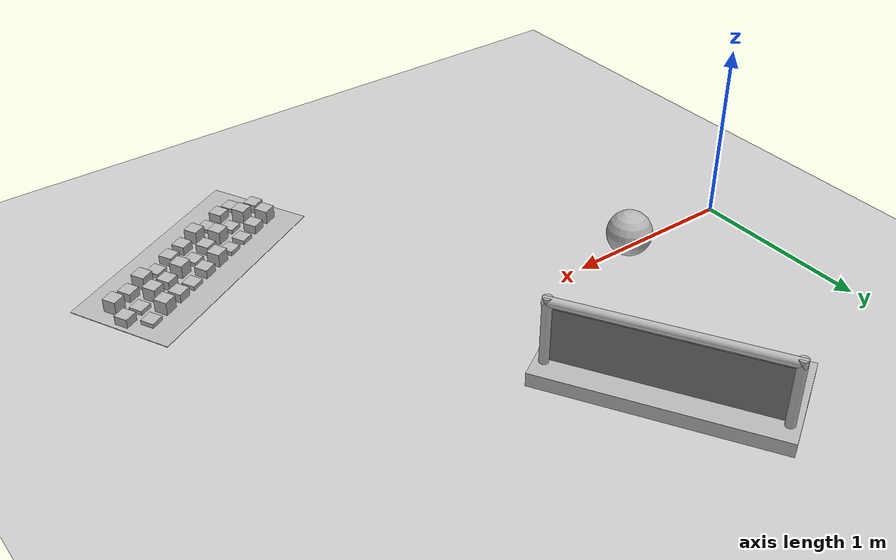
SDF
<sdf version="1.6">
 <world name="default">
  <light name="sun" type="directional">
   <pose>0 0 10 0 -0 0</pose>
   <diffuse>0.8 0.8 0.8 1</diffuse>
   <specular>0.2 0.2 0.2 1</specular>
   <attenuation>
    <range>1000</range>
    <constant>0.9</constant>
    <linear>0.01</linear>
    <quadratic>0.001</quadratic>
   </attenuation>
   <direction>-0.5 0.1 -0.9</direction>
  </light>
  <model name="ground_plane">
   <static>1</static>
   <link name="link">
    <collision name="collision">
     <geometry><plane><normal>0 0 1</normal><size>100 100</size></plane></geometry>
     <surface><friction><ode><mu>1000</mu><mu2>500</mu2></ode></friction></surface>
    </collision>
    <visual name="visual">
     <cast_shadows>0</cast_shadows>
     <geometry><plane><normal>0 0 1</normal><size>100 100</size></plane></geometry>
     <material>
      <script><uri>file://media/materials/scripts/gazebo.material</uri><name>Gazebo/Grey</name></script>
     </material>
    </visual>
   </link>
  </model>
  <gravity>0 0 -9.8</gravity>
  <magnetic_field>6e-06 2.3e-05 -4.2e-05</magnetic_field>
  <atmosphere type="adiabatic"/>
  <physics name="default_physics" default="0" type="ode">
   <max_step_size>0.001</max_step_size>
   <real_time_factor>1</real_time_factor>
   <real_time_update_rate>1000</real_time_update_rate>
  </physics>
  <scene><ambient>0.4 0.4 0.4 1</ambient><background>0.7 0.7 0.7 1</background><shadows>1</shadows></scene>
  <spherical_coordinates>
   <surface_model>EARTH_WGS84</surface_model>
   <latitude_deg>0</latitude_deg>
   <longitude_deg>0</longitude_deg>
   <elevation>0</elevation>
   <heading_deg>0</heading_deg>
  </spherical_coordinates>
  <model name="frc2016_lowbar">
   <link name="base">
    <inertial>
     <mass>50</mass>
     <inertia>
      <ixx>0.035543</ixx>
      <ixy>0</ixy>
      <ixz>0</ixz>
      <iyy>0.134412</iyy>
      <iyz>0</iyz>
      <izz>0.165376</izz>
     </inertia>
    </inertial>
    <visual name="platform">
     <pose>0 0 0.039065 0 -0 0</pose>
     <geometry><box><size>1.26 0.5996 0.07813</size></box></geometry>
    </visual>
    <collision name="platform">
     <pose>0 0 0.039065 0 -0 0</pose>
     <geometry><box><size>1.27 0.6096 0.07813</size></box></geometry>
    </collision>
    <visual name="right_column">
     <pose>-0.57845 -0.18464 0.26863 0 -0 0</pose>
     <geometry><cylinder><radius>0.0254</radius><length>0.381</length></cylinder></geometry>
    </visual>
    <collision name="right_column">
     <pose>-0.57845 -0.18464 0.26863 0 -0 0</pose>
     <geometry><cylinder><radius>0.0254</radius><length>0.381</length></cylinder></geometry>
    </collision>
    <visual name="left_column">
     <pose>0.57845 -0.18464 0.26863 0 -0 0</pose>
     <geometry><cylinder><radius>0.0254</radius><length>0.381</length></cylinder></geometry>
    </visual>
    <collision name="left_column">
     <pose>0.57845 -0.18464 0.26863 0 -0 0</pose>
     <geometry><cylinder><radius>0.0254</radius><length>0.381</length></cylinder></geometry>
    </collision>
    <visual name="horizontal">
     <pose>0 -0.18464 0.43556 0 1.5707 0</pose>
     <geometry><cylinder><radius>0.0254</radius><length>1.2018</length></cylinder></geometry>
    </visual>
    <collision name="horizontal">
     <pose>0 -0.18464 0.43556 0 1.5707 0</pose>
     <geometry><cylinder><radius>0.0254</radius><length>1.2018</length></cylinder></geometry>
    </collision>
   </link>
   <link name="wall">
    <pose>0 -0.1778 0.24323 0 -0 0</pose>
    <inertial>
     <mass>1</mass>
     <inertia>
      <ixx>0.00774528</ixx>
      <ixy>0</ixy>
      <ixz>0</ixz>
      <iyy>0.116613</iyy>
      <iyz>0</iyz>
      <izz>0.108874</izz>
     </inertia>
    </inertial>
    <visual name="visual">
     <geometry><box><size>1.1176 0.00635 0.3</size></box></geometry>
     <material><ambient>0.46 0.46 0.46 1</ambient><diffuse>0.46 0.46 0.46 1</diffuse></material>
    </visual>
    <collision name="collision"><geometry><box><size>1.143 0.00635 0.3</size></box></geometry></collision>
   </link>
   <joint name="bar_joint" type="revolute">
    <pose>0 0 0.36378 0 -0 0</pose>
    <parent>base</parent>
    <child>wall</child>
    <axis>
     <xyz>1 0 0</xyz>
     <limit><lower>-1.5707</lower><upper>1.5707</upper></limit>
     <use_parent_model_frame>0</use_parent_model_frame>
     <dynamics><spring_reference>0</spring_reference><spring_stiffness>0</spring_stiffness></dynamics>
    </axis>
   </joint>
   <pose>1.28084 0.947929 0.009995 2.5e-05 -4e-06 2.11173</pose>
  </model>
  <model name="frc2016_ball">
   <pose>0.696093 0.036476 0.136001 0 -0 0</pose>
   <link name="link">
    <inertial>
     <mass>0.213</mass>
     <inertia>
      <ixx>0.00322667</ixx>
      <ixy>0</ixy>
      <ixz>0</ixz>
      <iyy>0.00322667</iyy>
      <iyz>0</iyz>
      <izz>0.00322667</izz>
     </inertia>
    </inertial>
    <visual name="visual">
     <geometry><sphere><radius>0.127</radius></sphere></geometry>
     <material><shader type="pixel"><normal_map>__default__</normal_map></shader></material>
    </visual>
    <collision name="collision">
     <geometry><sphere><radius>0.127</radius></sphere></geometry>
     <surface>
      <friction>
       <ode><mu>1e+12</mu><mu2>1e+08</mu2><fdir1>0 0 0</fdir1><slip1>0</slip1><slip2>0</slip2></ode>
       <torsional>
        <coefficient>1</coefficient>
        <patch_radius>0</patch_radius>
        <surface_radius>0</surface_radius>
        <use_patch_radius>1</use_patch_radius>
        <ode><slip>0</slip></ode>
       </torsional>
      </friction>
      <bounce><restitution_coefficient>0.15937</restitution_coefficient><threshold>0</threshold></bounce>
      <contact>
       <collide_without_contact>0</collide_without_contact>
       <collide_without_contact_bitmask>1</collide_without_contact_bitmask>
       <collide_bitmask>1</collide_bitmask>
       <ode>
        <soft_cfm>0</soft_cfm>
        <soft_erp>0.2</soft_erp>
        <kp>1e+13</kp>
        <kd>1</kd>
        <max_vel>100</max_vel>
        <min_depth>0.001</min_depth>
       </ode>
       <bullet>
        <split_impulse>1</split_impulse>
        <split_impulse_penetration_threshold>-0.01</split_impulse_penetration_threshold>
        <soft_cfm>0</soft_cfm>
        <soft_erp>0.2</soft_erp>
        <kp>1e+13</kp>
        <kd>1</kd>
       </bullet>
      </contact>
     </surface>
    </collision>
   </link>
   <static>0</static>
   <allow_auto_disable>0</allow_auto_disable>
  </model>
  <model name="frc2016_roughterrain">
   <static>1</static>
   <link name="link">
    <visual name="platform">
     <pose>0 0 0.08269 0 -0 0</pose>
     <geometry><box><size>1.27 0.5969 0.003175</size></box></geometry>
    </visual>
    <collision name="platform">
     <pose>0 0 0.08269 0 -0 0</pose>
     <geometry><box><size>1.27 0.5969 0.003175</size></box></geometry>
    </collision>
    <visual name="row1_block1_sm">
     <pose>0.51435 0.1143 0.09698 0 -0 0</pose>
     <geometry><box><size>0.0762 0.0762 0.0254</size></box></geometry>
    </visual>
    <collision name="row1_block1_sm">
     <pose>0.51435 0.1143 0.09698 0 -0 0</pose>
     <geometry><box><size>0.0762 0.0762 0.0254</size></box></geometry>
    </collision>
    <visual name="row1_block2_lg">
     <pose>0.40005 0.1143 0.12238 0 -0 0</pose>
     <geometry><box><size>0.0762 0.0762 0.0762</size></box></geometry>
    </visual>
    <collision name="row1_block2_lg">
     <pose>0.40005 0.1143 0.12238 0 -0 0</pose>
     <geometry><box><size>0.0762 0.0762 0.0762</size></box></geometry>
    </collision>
    <visual name="row1_block3_md">
     <pose>0.28575 0.1143 0.10968 0 -0 0</pose>
     <geometry><box><size>0.0762 0.0762 0.0508</size></box></geometry>
    </visual>
    <collision name="row1_block3_md">
     <pose>0.28575 0.1143 0.10968 0 -0 0</pose>
     <geometry><box><size>0.0762 0.0762 0.0508</size></box></geometry>
    </collision>
    <visual name="row1_block4_sm">
     <pose>0.17145 0.1143 0.09698 0 -0 0</pose>
     <geometry><box><size>0.0762 0.0762 0.0254</size></box></geometry>
    </visual>
    <collision name="row1_block4_sm">
     <pose>0.17145 0.1143 0.09698 0 -0 0</pose>
     <geometry><box><size>0.0762 0.0762 0.0254</size></box></geometry>
    </collision>
    <visual name="row1_block5_md">
     <pose>0.05715 0.1143 0.10968 0 -0 0</pose>
     <geometry><box><size>0.0762 0.0762 0.0508</size></box></geometry>
    </visual>
    <collision name="row1_block5_md">
     <pose>0.05715 0.1143 0.10968 0 -0 0</pose>
     <geometry><box><size>0.0762 0.0762 0.0508</size></box></geometry>
    </collision>
    <visual name="row1_block6_lg">
     <pose>-0.05715 0.1143 0.12238 0 -0 0</pose>
     <geometry><box><size>0.0762 0.0762 0.0762</size></box></geometry>
    </visual>
    <collision name="row1_block6_lg">
     <pose>-0.05715 0.1143 0.12238 0 -0 0</pose>
     <geometry><box><size>0.0762 0.0762 0.0762</size></box></geometry>
    </collision>
    <visual name="row1_block7_sm">
     <pose>-0.17145 0.1143 0.09698 0 -0 0</pose>
     <geometry><box><size>0.0762 0.0762 0.0254</size></box></geometry>
    </visual>
    <collision name="row1_block7_sm">
     <pose>-0.17145 0.1143 0.09698 0 -0 0</pose>
     <geometry><box><size>0.0762 0.0762 0.0254</size></box></geometry>
    </collision>
    <visual name="row1_block8_sm">
     <pose>-0.28575 0.1143 0.09698 0 -0 0</pose>
     <geometry><box><size>0.0762 0.0762 0.0254</size></box></geometry>
    </visual>
    <collision name="row1_block8_sm">
     <pose>-0.28575 0.1143 0.09698 0 -0 0</pose>
     <geometry><box><size>0.0762 0.0762 0.0254</size></box></geometry>
    </collision>
    <visual name="row1_block9_md">
     <pose>-0.40005 0.1143 0.10968 0 -0 0</pose>
     <geometry><box><size>0.0762 0.0762 0.0508</size></box></geometry>
    </visual>
    <collision name="row1_block9_md">
     <pose>-0.40005 0.1143 0.10968 0 -0 0</pose>
     <geometry><box><size>0.0762 0.0762 0.0508</size></box></geometry>
    </collision>
    <visual name="row1_block10_lg">
     <pose>-0.51435 0.1143 0.12238 0 -0 0</pose>
     <geometry><box><size>0.0762 0.0762 0.0762</size></box></geometry>
    </visual>
    <collision name="row1_block10_lg">
     <pose>-0.51435 0.1143 0.12238 0 -0 0</pose>
     <geometry><box><size>0.0762 0.0762 0.0762</size></box></geometry>
    </collision>
    <visual name="row2_block1_md">
     <pose>0.5715 0 0.10968 0 -0 0</pose>
     <geometry><box><size>0.0762 0.0762 0.0508</size></box></geometry>
    </visual>
    <collision name="row2_block1_md">
     <pose>0.5715 0 0.10968 0 -0 0</pose>
     <geometry><box><size>0.0762 0.0762 0.0508</size></box></geometry>
    </collision>
    <visual name="row2_block2_sm">
     <pose>0.4572 0 0.09698 0 -0 0</pose>
     <geometry><box><size>0.0762 0.0762 0.0254</size></box></geometry>
    </visual>
    <collision name="row2_block2_sm">
     <pose>0.4572 0 0.09698 0 -0 0</pose>
     <geometry><box><size>0.0762 0.0762 0.0254</size></box></geometry>
    </collision>
    <visual name="row2_block3_lg">
     <pose>0.3429 0 0.12238 0 -0 0</pose>
     <geometry><box><size>0.0762 0.0762 0.0762</size></box></geometry>
    </visual>
    <collision name="row2_block3_lg">
     <pose>0.3429 0 0.12238 0 -0 0</pose>
     <geometry><box><size>0.0762 0.0762 0.0762</size></box></geometry>
    </collision>
    <visual name="row2_block4_md">
     <pose>0.2286 0 0.10968 0 -0 0</pose>
     <geometry><box><size>0.0762 0.0762 0.0508</size></box></geometry>
    </visual>
    <collision name="row2_block4_md">
     <pose>0.2286 0 0.10968 0 -0 0</pose>
     <geometry><box><size>0.0762 0.0762 0.0508</size></box></geometry>
    </collision>
    <visual name="row2_block5_lg">
     <pose>0.1143 0 0.12238 0 -0 0</pose>
     <geometry><box><size>0.0762 0.0762 0.0762</size></box></geometry>
    </visual>
    <collision name="row2_block5_lg">
     <pose>0.1143 0 0.12238 0 -0 0</pose>
     <geometry><box><size>0.0762 0.0762 0.0762</size></box></geometry>
    </collision>
    <visual name="row2_block6_sm">
     <pose>0 0 0.09698 0 -0 0</pose>
     <geometry><box><size>0.0762 0.0762 0.0254</size></box></geometry>
    </visual>
    <collision name="row2_block6_sm">
     <pose>0 0 0.09698 0 -0 0</pose>
     <geometry><box><size>0.0762 0.0762 0.0254</size></box></geometry>
    </collision>
    <visual name="row2_block7_md">
     <pose>-0.1143 0 0.10968 0 -0 0</pose>
     <geometry><box><size>0.0762 0.0762 0.0508</size></box></geometry>
    </visual>
    <collision name="row2_block7_md">
     <pose>-0.1143 0 0.10968 0 -0 0</pose>
     <geometry><box><size>0.0762 0.0762 0.0508</size></box></geometry>
    </collision>
    <visual name="row2_block8_lg">
     <pose>-0.2286 0 0.12238 0 -0 0</pose>
     <geometry><box><size>0.0762 0.0762 0.0762</size></box></geometry>
    </visual>
    <collision name="row2_block8_lg">
     <pose>-0.2286 0 0.12238 0 -0 0</pose>
     <geometry><box><size>0.0762 0.0762 0.0762</size></box></geometry>
    </collision>
    <visual name="row2_block9_sm">
     <pose>-0.3429 0 0.09698 0 -0 0</pose>
     <geometry><box><size>0.0762 0.0762 0.0254</size></box></geometry>
    </visual>
    <collision name="row2_block9_sm">
     <pose>-0.3429 0 0.09698 0 -0 0</pose>
     <geometry><box><size>0.0762 0.0762 0.0254</size></box></geometry>
    </collision>
    <visual name="row2_block10_lg">
     <pose>-0.4572 0 0.12238 0 -0 0</pose>
     <geometry><box><size>0.0762 0.0762 0.0762</size></box></geometry>
    </visual>
    <collision name="row2_block10_lg">
     <pose>-0.4572 0 0.12238 0 -0 0</pose>
     <geometry><box><size>0.0762 0.0762 0.0762</size></box></geometry>
    </collision>
    <visual name="row2_block11_md">
     <pose>-0.5715 0 0.10968 0 -0 0</pose>
     <geometry><box><size>0.0762 0.0762 0.0508</size></box></geometry>
    </visual>
    <collision name="row2_block11_md">
     <pose>-0.5715 0 0.10968 0 -0 0</pose>
     <geometry><box><size>0.0762 0.0762 0.0508</size></box></geometry>
    </collision>
    <visual name="row3_block1_lg">
     <pose>0.51435 -0.1143 0.12238 0 -0 0</pose>
     <geometry><box><size>0.0762 0.0762 0.0762</size></box></geometry>
    </visual>
    <collision name="row3_block1_lg">
     <pose>0.51435 -0.1143 0.12238 0 -0 0</pose>
     <geometry><box><size>0.0762 0.0762 0.0762</size></box></geometry>
    </collision>
    <visual name="row3_block2_md">
     <pose>0.40005 -0.1143 0.10968 0 -0 0</pose>
     <geometry><box><size>0.0762 0.0762 0.0508</size></box></geometry>
    </visual>
    <collision name="row3_block2_md">
     <pose>0.40005 -0.1143 0.10968 0 -0 0</pose>
     <geometry><box><size>0.0762 0.0762 0.0508</size></box></geometry>
    </collision>
    <visual name="row3_block3_lg">
     <pose>0.28575 -0.1143 0.12238 0 -0 0</pose>
     <geometry><box><size>0.0762 0.0762 0.0762</size></box></geometry>
    </visual>
    <collision name="row3_block3_lg">
     <pose>0.28575 -0.1143 0.12238 0 -0 0</pose>
     <geometry><box><size>0.0762 0.0762 0.0762</size></box></geometry>
    </collision>
    <visual name="row3_block4_sm">
     <pose>0.17145 -0.1143 0.09698 0 -0 0</pose>
     <geometry><box><size>0.0762 0.0762 0.0254</size></box></geometry>
    </visual>
    <collision name="row3_block4_sm">
     <pose>0.17145 -0.1143 0.09698 0 -0 0</pose>
     <geometry><box><size>0.0762 0.0762 0.0254</size></box></geometry>
    </collision>
    <visual name="row3_block5_md">
     <pose>0.05715 -0.1143 0.10968 0 -0 0</pose>
     <geometry><box><size>0.0762 0.0762 0.0508</size></box></geometry>
    </visual>
    <collision name="row3_block5_md">
     <pose>0.05715 -0.1143 0.10968 0 -0 0</pose>
     <geometry><box><size>0.0762 0.0762 0.0508</size></box></geometry>
    </collision>
    <visual name="row3_block6_md">
     <pose>-0.05715 -0.1143 0.10968 0 -0 0</pose>
     <geometry><box><size>0.0762 0.0762 0.0508</size></box></geometry>
    </visual>
    <collision name="row3_block6_md">
     <pose>-0.05715 -0.1143 0.10968 0 -0 0</pose>
     <geometry><box><size>0.0762 0.0762 0.0508</size></box></geometry>
    </collision>
    <visual name="row3_block7_lg">
     <pose>-0.17145 -0.1143 0.12238 0 -0 0</pose>
     <geometry><box><size>0.0762 0.0762 0.0762</size></box></geometry>
    </visual>
    <collision name="row3_block7_lg">
     <pose>-0.17145 -0.1143 0.12238 0 -0 0</pose>
     <geometry><box><size>0.0762 0.0762 0.0762</size></box></geometry>
    </collision>
    <visual name="row3_block8_sm">
     <pose>-0.28575 -0.1143 0.09698 0 -0 0</pose>
     <geometry><box><size>0.0762 0.0762 0.0254</size></box></geometry>
    </visual>
    <collision name="row3_block8_sm">
     <pose>-0.28575 -0.1143 0.09698 0 -0 0</pose>
     <geometry><box><size>0.0762 0.0762 0.0254</size></box></geometry>
    </collision>
    <visual name="row3_block9_md">
     <pose>-0.40005 -0.1143 0.10968 0 -0 0</pose>
     <geometry><box><size>0.0762 0.0762 0.0508</size></box></geometry>
    </visual>
    <collision name="row3_block9_md">
     <pose>-0.40005 -0.1143 0.10968 0 -0 0</pose>
     <geometry><box><size>0.0762 0.0762 0.0508</size></box></geometry>
    </collision>
    <visual name="row3_block10_sm">
     <pose>-0.51435 -0.1143 0.09698 0 -0 0</pose>
     <geometry><box><size>0.0762 0.0762 0.0254</size></box></geometry>
    </visual>
    <collision name="row3_block10_sm">
     <pose>-0.51435 -0.1143 0.09698 0 -0 0</pose>
     <geometry><box><size>0.0762 0.0762 0.0254</size></box></geometry>
    </collision>
   </link>
   <pose>2.69606 -1.19766 0 -0.021262 0.011137 0.482449</pose>
  </model>
 </world>
</sdf>
